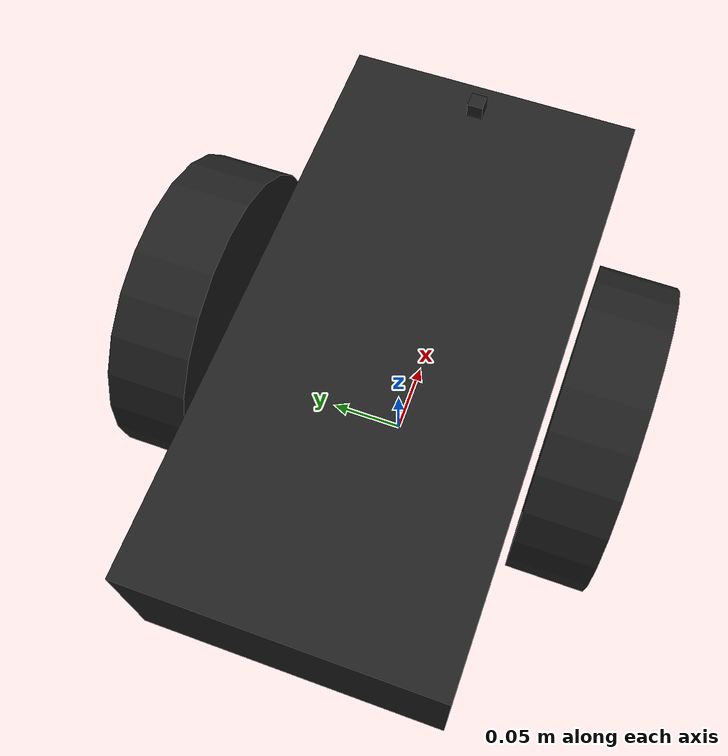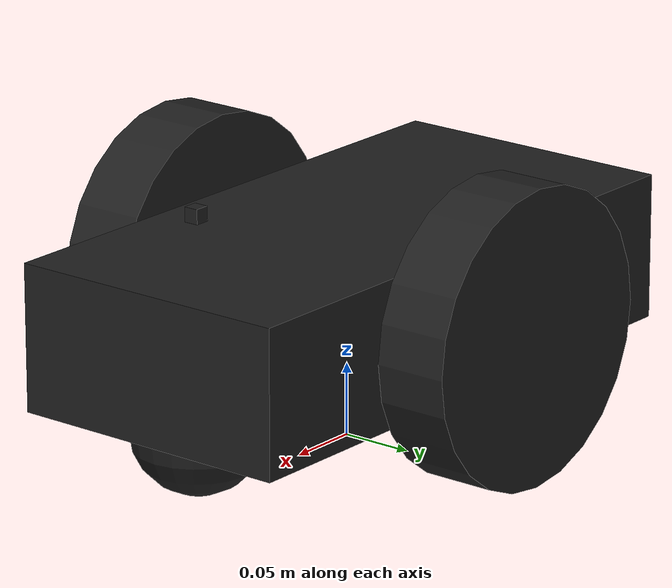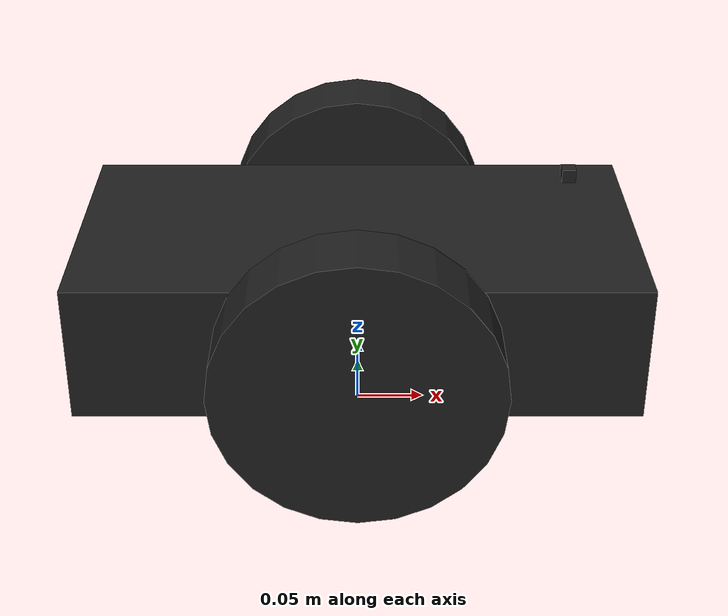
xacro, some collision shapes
<?xml version = "1.0"?>
<robot name="agv" xmlns:xacro="http://ros.org/wiki/xacro">
	<link name="base_footprint">
		<visual>
			 <origin xyz="0 0 0" rpy="0 0 0"/>
			 <geometry>
				 <box size= "0.01 0.01 0.01" />
			 </geometry>
			 <material name="light_black"/>
		 </visual>

		 <inertial>
			 <origin xyz="0 0 0" rpy="0 0 0"/>
			 <mass value="0.01"/>
			 <inertia ixx="0.01" ixy="0.0" ixz="0.0"
					  iyy="0.01" iyz="0.0"
					  izz="0.01" />
		 </inertial>
	</link>
	<joint name="base_joint" type="fixed">
		<parent link="base_footprint"/>
		<child link="base_link" />
		<origin xyz="0 0 0" rpy="0 0 0"/>
	</joint>

	 <link name="base_link">
		 <visual>
			 <origin xyz="0 0 0.1" rpy="0 0 0"/>
			 <geometry>
				 <box size= "0.4 0.2 0.1" />
			 </geometry>
			 <material name="light_black"/>
		 </visual>
		 <collision>
			 <origin xyz="0 0 0.1" rpy="0 0 0"/>
			 <geometry>
				 <box size= "0.4 0.2 0.1" />
			 </geometry>
		 </collision>
		 <inertial>
			 <origin xyz="0 0 0.1" rpy="0 0 0"/>
			 <mass value="10"/>
			 <inertia ixx="0.01" ixy="0.0" ixz="0.0"
					  iyy="0.01" iyz="0.0"
					  izz="0.01" />
		 </inertial>
	</link>

	<link name="caster_ball_1">
		 <visual>
			 <origin xyz="0 0 0" rpy="0 0 0"/>
			 <geometry>
				 <sphere radius = "0.05"/>
			 </geometry>
			 <material name="light_black"/>
		 </visual>
		 <collision>
			 <origin xyz="0 0 0" rpy="0 0 0"/>
			 <geometry>
				 <sphere radius = "0.05"/>
			 </geometry>
		 </collision>
		 <inertial>
			 <origin xyz="0 0 0" rpy="0 0 0"/>
			 <mass value="1"/>
			 <inertia ixx="0.01" ixy="0.0" ixz="0.0"
					  iyy="0.01" iyz="0.0"
					  izz="0.01" />
		 </inertial>

	</link>

	<joint name="ball_joint_1" type="fixed">
		<parent link="base_link"/>
		<child link="caster_ball_1" />
		<origin xyz="-0.15 0 0.05"  rpy="0 0 0"/>
		<axis xyz="0 1 1"/>
	</joint>

	<link name="caster_ball_2">
		 <visual>
			 <origin xyz="0 0 0" rpy="0 0 0"/>
			 <geometry>
				 <sphere radius = "0.045"/>
			 </geometry>
			 <material name="light_black"/>
		 </visual>
		 <collision>
			 <origin xyz="0 0 0" rpy="0 0 0"/>
			 <geometry>
				 <sphere radius = "0.045"/>
			 </geometry>
		 </collision>
		 <inertial>
			 <origin xyz="0 0 0" rpy="0 0 0"/>
			 <mass value="1"/>
			 <inertia ixx="0.01" ixy="0.0" ixz="0.0"
					  iyy="0.01" iyz="0.0"
					  izz="0.01" />
		 </inertial>
	</link>

	<joint name="ball_joint_2" type="fixed">
		<parent link="base_link"/>
		<child link="caster_ball_2" />
		<origin xyz="0.15 0 0.05"  rpy="0 0 0"/>
		<axis xyz="0 1 1"/>
	</joint>

	<link name="left_wheel">
		 <visual>
			 <origin xyz="0 0 0" rpy="0 0 0"/>
			 <geometry>
				 <cylinder radius = "0.1" length ="0.05"/>
			 </geometry>
			 <material name="light_black"/>
		 </visual>
		 <collision>
			 <origin xyz="0 0 0" rpy="0 0 0"/>
			 <geometry>
				  <cylinder radius = "0.1" length ="0.00001"/>
			 </geometry>
		 </collision>
		 <inertial>
			 <origin xyz="0 0 0" rpy="0 0 0"/>
			 <mass value="1"/>
			 <inertia ixx="0.01" ixy="0.0" ixz="0.0"
					  iyy="0.01" iyz="0.0"
					  izz="0.01" />
		 </inertial>
	</link>
	<joint name="left_wheel_joint" type="continuous">
		<parent link="base_link"/>
		<child link="left_wheel" />
		<origin xyz="0 0.13 0.1" rpy="0 1.5707 1.5707"/>
		<axis xyz="0 0 1"/>
	</joint>

	<link name="right_wheel">
		 <visual>
			 <origin xyz="0 0 0" rpy="0 0 0"/>
			 <geometry>
				 <cylinder radius = "0.1" length ="0.05"/>
			 </geometry>
			 <material name="light_black"/>
		 </visual>

		 <collision>
			 <origin xyz="0 0 0" rpy="0 0 0"/>
			 <geometry>
				  <cylinder radius = "0.1" length ="0.00001"/>
			 </geometry>
		 </collision>
		 <inertial>
			 <origin xyz="0 0 0" rpy="0 0 0"/>
			 <mass value="1"/>
			 <inertia ixx="0.01" ixy="0.0" ixz="0.0"
					  iyy="0.01" iyz="0.0"
					  izz="0.01" />
		 </inertial>
	</link>
	<joint name="right_wheel_joint" type="continuous">
		<parent link="base_link"/>
		<child link="right_wheel" />
		<origin xyz="0 -0.13 0.1" rpy="0 1.5707 1.5707"/>
		<axis xyz="0 0 1"/>
	</joint>

	<link name = "laser_sensor_link">
		<visual>
			 <origin xyz="0 0 -0.03" rpy="0 0 0"/>
			 <geometry>
				 <mesh filename = "package://agv_description/meshes/hokuyo.dae" />
			 </geometry>
			 <material name="light_black"/>
		 </visual>
		 <collision>
			 <origin xyz="0 0 -0.03" rpy="0 0 0"/>
			 <geometry>
				  <box size= "0.01 0.01 0.01" />
			 </geometry>
		 </collision>
		 <inertial>
			 <origin xyz="0 0 0" rpy="0 0 0"/>
			 <mass value="0.5"/>
			 <inertia ixx="0.01" ixy="0.0" ixz="0.0"
					  iyy="0.01" iyz="0.0"
					  izz="0.01" />
		 </inertial>
	</link>
	<joint name="hokuyo_joint" type="fixed">
		<parent link="base_link"/>
		<child link="laser_sensor_link" />
		<origin xyz="0.15 0 0.22" rpy="0 0 0"/>
	</joint>

	<gazebo reference = "laser_sensor_link">
		<sensor name = "laser" type = "ray" >
			<pose>0.15 0 0 0 0 0 </pose>
			<always_on>1</always_on>
			<update_rate>30</update_rate>
			<visualize>true</visualize>
		t	<ray>
				<scan>
					<horizontal>
						<sample>240</sample>
						<resolution>2</resolution>
						<min_angle>-2.26889</min_angle>
						<max_angle> 2.26899</max_angle>
					</horizontal>
				</scan>
				<range>
					<min>0.08</min>
					<max> 10 </max>
					<resolution>0.01</resolution>
				</range>
				<noise>
					<type>gaussian</type>
					<mean>0.0</mean>
					<stddev>0.0</stddev>
				</noise>
			</ray>
			<plugin name = "laser" filename = "libgazebo_ros_laser.so">
				<topicName>sensor_msgs/LaserScan</topicName>
				<frameName>laser_sensor_link</frameName>
			</plugin>
		</sensor>
	</gazebo>

	<gazebo>
		<plugin name="differential_drive_controller" filename="libgazebo_ros_diff_drive.so">
			<commandTopic>cmd_vel</commandTopic>
			<odometryTopic>odom</odometryTopic>
			<odometryFrame>odom</odometryFrame>
			<robotBaseFrame>base_footprint</robotBaseFrame>
			<publishWheelTF>true</publishWheelTF>
			<publishWheelJointState>true</publishWheelJointState>
			<wheelSeparation>0.13</wheelSeparation>
			<wheelDiameter>0.1</wheelDiameter>
			<wheelAcceleration>0.5</wheelAcceleration>
			<wheelTorque>500</wheelTorque>
			<updateRate>100</updateRate>
			<alwaysOn>true</alwaysOn>
			<rosDebugLevel>0</rosDebugLevel>
			<leftJoint>right_wheel_joint</leftJoint>
			<rightJoint>left_wheel_joint</rightJoint>
			<odometrySource>world</odometrySource>
			<publishTf>1</publishTf>
			<legacyMode>true</legacyMode>
		</plugin>
	</gazebo>

</robot>
